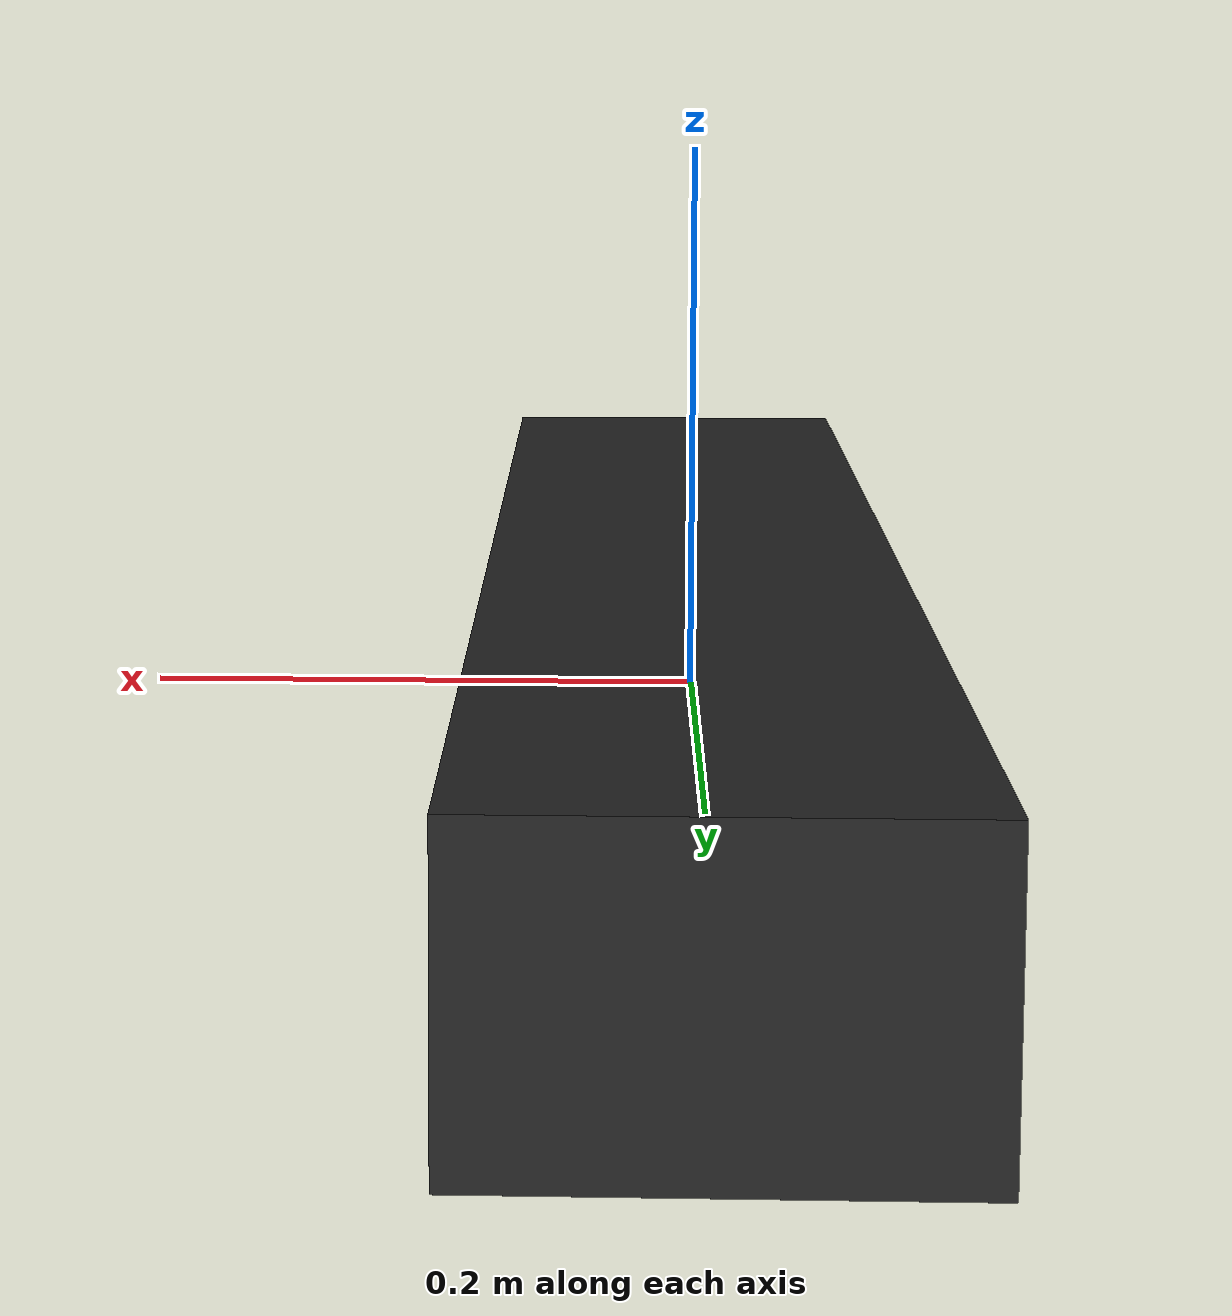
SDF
<?xml version='1.0'?>
<sdf version='1.6'>
  <model name='base3'>
    <link name='base_3'>
      <inertial>
        <mass>212.8</mass>
        <inertia>
          <ixx>9.39867</ixx>
          <ixy>0</ixy>
          <ixz>0</ixz>
          <iyy>9.39867</iyy>
          <iyz>0</iyz>
          <izz>1.41867</izz>
        </inertia>
        <pose frame=''>0 0 0 0 -0 0</pose>
      </inertial>
      <self_collide>0</self_collide>
      <enable_wind>0</enable_wind>
      <kinematic>0</kinematic>
      <pose frame=''>0 0 0 0 -0 0</pose>
      <gravity>1</gravity>
      <visual name='visual'>
        <pose frame=''>0 0 0 0 -0 0</pose>
        <geometry>
          <box>
            <size>0.15 0.8 0.1</size>
          </box>
        </geometry>
        <material>
          <shader type='pixel'>
            <normal_map>__default__</normal_map>
          </shader>
          <script>
            <name>ModelPreview_1::link::visual_MATERIAL_ModelPreview_1::link::visual_MATERIAL_</name>
            <uri>__default__</uri>
          </script>
          <ambient>0.15 0.15 0.15 1</ambient>
          <diffuse>0.15 0.15 0.15 1</diffuse>
          <specular>0.15 0.15 0.15 1</specular>
          <emissive>0.15 0.15 0.15 1</emissive>
        </material>
        <transparency>0</transparency>
        <cast_shadows>0</cast_shadows>
      </visual>
      <collision name='collision'>
        <laser_retro>0</laser_retro>
        <max_contacts>10</max_contacts>
        <pose frame=''>0 0 0 0 -0 0</pose>
        <geometry>
          <box>
            <size>0.15 0.8 0.1</size>
          </box>
        </geometry>
        <surface>
          <friction>
            <ode>
              <mu>1</mu>
              <mu2>1</mu2>
              <fdir1>0 0 0</fdir1>
              <slip1>0</slip1>
              <slip2>0</slip2>
            </ode>
            <torsional>
              <coefficient>1</coefficient>
              <patch_radius>0</patch_radius>
              <surface_radius>0</surface_radius>
              <use_patch_radius>1</use_patch_radius>
              <ode>
                <slip>0</slip>
              </ode>
            </torsional>
          </friction>
          <bounce>
            <restitution_coefficient>0</restitution_coefficient>
            <threshold>1e+06</threshold>
          </bounce>
          <contact>
            <collide_without_contact>0</collide_without_contact>
            <collide_without_contact_bitmask>1</collide_without_contact_bitmask>
            <collide_bitmask>1</collide_bitmask>
            <ode>
              <soft_cfm>0</soft_cfm>
              <soft_erp>0.2</soft_erp>
              <kp>1e+13</kp>
              <kd>1</kd>
              <max_vel>0.01</max_vel>
              <min_depth>0</min_depth>
            </ode>
            <bullet>
              <split_impulse>1</split_impulse>
              <split_impulse_penetration_threshold>-0.01</split_impulse_penetration_threshold>
              <soft_cfm>0</soft_cfm>
              <soft_erp>0.2</soft_erp>
              <kp>1e+13</kp>
              <kd>1</kd>
            </bullet>
          </contact>
        </surface>
      </collision>
    </link>
    <static>0</static>
    <allow_auto_disable>1</allow_auto_disable>
  </model>
</sdf>
